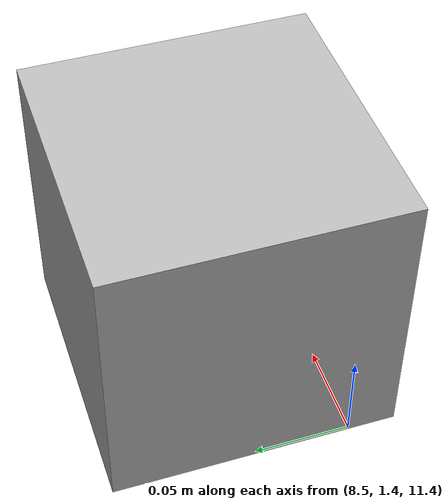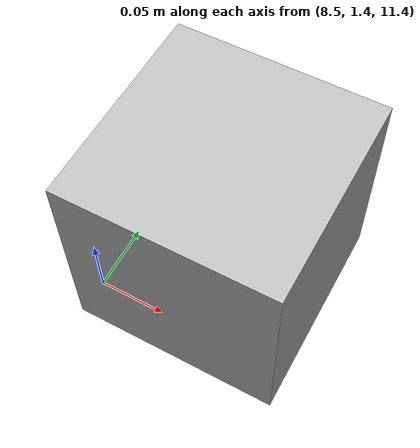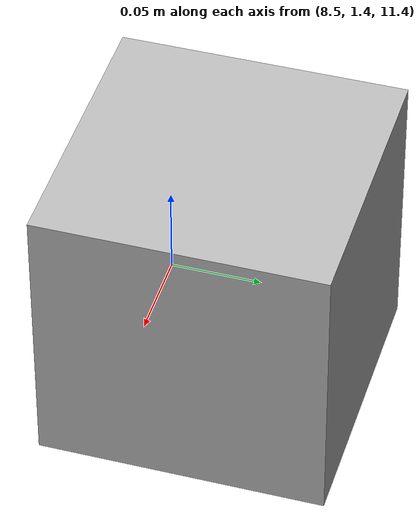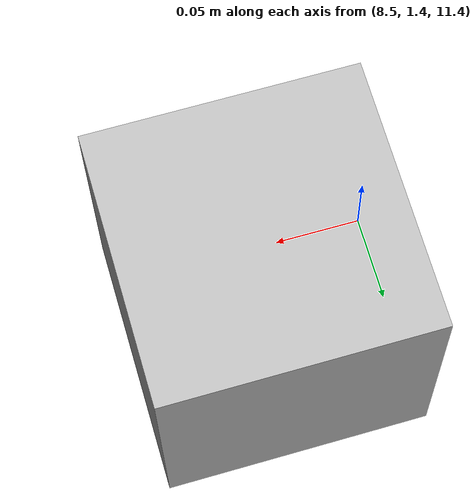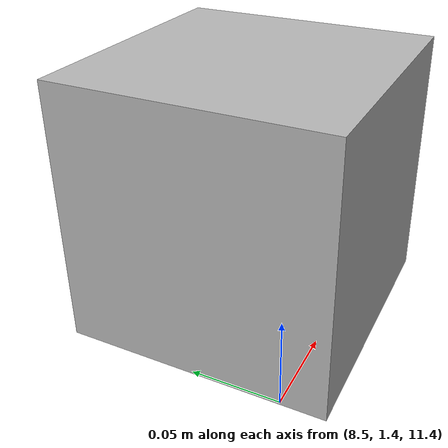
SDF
<sdf version="1.7">
 <world name="default">
  <model name="orthogonal_747_2.000.15_TS">
   <static>1</static>
   <link name="u_link_6_3_7">
    <inertial>
     <mass>1</mass>
     <inertia>
      <ixx>0.166667</ixx>
      <ixy>0</ixy>
      <ixz>0</ixz>
      <iyy>0.166667</iyy>
      <iyz>0</iyz>
      <izz>0.166667</izz>
     </inertia>
    </inertial>
    <pose>15.05 6.45 13.975 0 -0 0</pose>
    <visual name="visual_0">
     <laser_retro>6119</laser_retro>
     <geometry><box><size>0.15 1e-06 0.15</size></box></geometry>
     <material>
      <script><name>Gazebo/Grey</name><uri>file://media/materials/scripts/gazebo.material</uri></script>
      <shader type="pixel"><normal_map>__default__</normal_map></shader>
      <ambient>0.678 0.498 0.659 1</ambient>
      <diffuse>0.7 0.7 0.7 1</diffuse>
      <specular>0.01 0.01 0.01 1</specular>
      <emissive>0 0 0 1</emissive>
     </material>
     <pose>0 -0.075 0 0 -0 0</pose>
     <transparency>1</transparency>
    </visual>
    <visual name="visual_1">
     <laser_retro>6120</laser_retro>
     <geometry><box><size>0.15 1e-06 0.15</size></box></geometry>
     <material>
      <script><name>Gazebo/Grey</name><uri>file://media/materials/scripts/gazebo.material</uri></script>
      <shader type="pixel"><normal_map>__default__</normal_map></shader>
      <ambient>0.447 0.624 0.812 1</ambient>
      <diffuse>0.7 0.7 0.7 1</diffuse>
      <specular>0.01 0.01 0.01 1</specular>
      <emissive>0 0 0 1</emissive>
     </material>
     <pose>0 0.075 0 0 -0 0</pose>
     <transparency>1</transparency>
    </visual>
    <visual name="visual_2">
     <laser_retro>6121</laser_retro>
     <geometry><box><size>0.15 0.15 1e-06</size></box></geometry>
     <material>
      <script><name>Gazebo/Grey</name><uri>file://media/materials/scripts/gazebo.material</uri></script>
      <shader type="pixel"><normal_map>__default__</normal_map></shader>
      <ambient>0.988 0.686 0.243 1</ambient>
      <diffuse>0.7 0.7 0.7 1</diffuse>
      <specular>0.01 0.01 0.01 1</specular>
      <emissive>0 0 0 1</emissive>
     </material>
     <pose>0 0 -0.075 0 -0 0</pose>
     <transparency>1</transparency>
    </visual>
    <visual name="visual_3">
     <laser_retro>6122</laser_retro>
     <geometry><box><size>1e-06 0.15 0.15</size></box></geometry>
     <material>
      <script><name>Gazebo/Grey</name><uri>file://media/materials/scripts/gazebo.material</uri></script>
      <shader type="pixel"><normal_map>__default__</normal_map></shader>
      <ambient>0.988 0.914 0.31 1</ambient>
      <diffuse>0.7 0.7 0.7 1</diffuse>
      <specular>0.01 0.01 0.01 1</specular>
      <emissive>0 0 0 1</emissive>
     </material>
     <pose>0.075 0 0 0 -0 0</pose>
     <transparency>1</transparency>
    </visual>
    <visual name="visual_4">
     <laser_retro>6123</laser_retro>
     <geometry><box><size>0.15 0.15 1e-06</size></box></geometry>
     <material>
      <script><name>Gazebo/Grey</name><uri>file://media/materials/scripts/gazebo.material</uri></script>
      <shader type="pixel"><normal_map>__default__</normal_map></shader>
      <ambient>0.937 0.161 0.161 1</ambient>
      <diffuse>0.7 0.7 0.7 1</diffuse>
      <specular>0.01 0.01 0.01 1</specular>
      <emissive>0 0 0 1</emissive>
     </material>
     <pose>0 0 0.075 0 -0 0</pose>
     <transparency>1</transparency>
    </visual>
    <visual name="visual_5">
     <laser_retro>6124</laser_retro>
     <geometry><box><size>1e-06 0.15 0.15</size></box></geometry>
     <material>
      <script><name>Gazebo/Grey</name><uri>file://media/materials/scripts/gazebo.material</uri></script>
      <shader type="pixel"><normal_map>__default__</normal_map></shader>
      <ambient>0.541 0.886 0.204 1</ambient>
      <diffuse>0.7 0.7 0.7 1</diffuse>
      <specular>0.01 0.01 0.01 1</specular>
      <emissive>0 0 0 1</emissive>
     </material>
     <pose>-0.075 0 0 0 -0 0</pose>
     <transparency>1</transparency>
    </visual>
    <visual name="visual_texture">
     <geometry><box><size>0.149985 0.149985 0.149985</size></box></geometry>
     <material>
      <script>
       <uri>model://BASE_MODELS/simple_block_v2_textured/materials/scripts</uri>
       <uri>model://BASE_MODELS/simple_block_v2_textured/materials/textures</uri>
       <name>metal</name>
      </script>
     </material>
     <laser_retro>6125</laser_retro>
    </visual>
    <collision name="collision">
     <geometry><box><size>0.15 0.15 0.15</size></box></geometry>
     <surface>
      <friction>
       <ode><mu>1</mu><mu2>1</mu2><fdir1>0 0 0</fdir1><slip1>0</slip1><slip2>0</slip2></ode>
       <torsional>
        <coefficient>1</coefficient>
        <patch_radius>0</patch_radius>
        <surface_radius>0</surface_radius>
        <use_patch_radius>1</use_patch_radius>
        <ode><slip>0</slip></ode>
       </torsional>
      </friction>
      <bounce><restitution_coefficient>0</restitution_coefficient><threshold>1e+06</threshold></bounce>
      <contact>
       <collide_without_contact>0</collide_without_contact>
       <collide_without_contact_bitmask>1</collide_without_contact_bitmask>
       <collide_bitmask>1</collide_bitmask>
       <ode>
        <soft_cfm>0</soft_cfm>
        <soft_erp>0.2</soft_erp>
        <kp>1e+13</kp>
        <kd>1</kd>
        <max_vel>0.01</max_vel>
        <min_depth>0</min_depth>
       </ode>
       <bullet>
        <split_impulse>1</split_impulse>
        <split_impulse_penetration_threshold>-0.01</split_impulse_penetration_threshold>
        <soft_cfm>0</soft_cfm>
        <soft_erp>0.2</soft_erp>
        <kp>1e+13</kp>
        <kd>1</kd>
       </bullet>
      </contact>
     </surface>
    </collision>
   </link>
   <pose>-6.47624 -5 -2.5 0 -0 0</pose>
  </model>
 </world>
</sdf>
